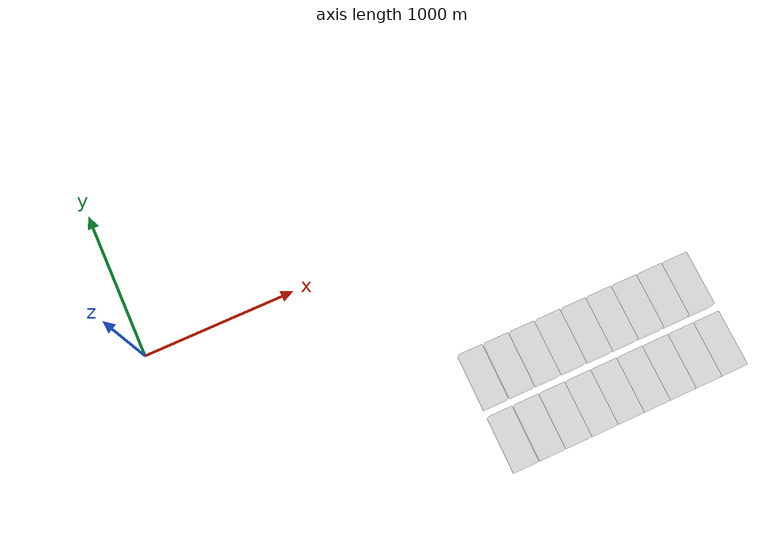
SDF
<sdf version="1.5">
 <world name="default">
  <model name="lost_person">
   <pose>999.144 1001.19 651.982 -0.062539 -0.184761 0.006763</pose>
   <link name="link">
    <sensor name="gps" type="gps"><always_on>1</always_on></sensor>
    <kinematic>1</kinematic>
    <collision name="collision">
     <geometry><box><size>1 1 1</size></box></geometry>
     <surface><friction><ode><mu>0</mu><mu2>0</mu2></ode></friction></surface>
    </collision>
    <visual name="visual"><geometry><box><size>1 1 1</size></box></geometry></visual>
    <visual name="visual_ul">
     <pose>0.5 0.5 0.5 0 -0 0</pose>
     <geometry><sphere><radius>0.04</radius></sphere></geometry>
     <material><script><name>Gazebo/Red</name><uri>__default__</uri></script></material>
    </visual>
    <visual name="visual_ur">
     <pose>0.5 -0.5 0.5 0 -0 0</pose>
     <geometry><sphere><radius>0.04</radius></sphere></geometry>
     <material><script><name>Gazebo/Green</name><uri>__default__</uri></script></material>
    </visual>
    <visual name="visual_lr">
     <pose>-0.5 -0.5 0.5 0 -0 0</pose>
     <geometry><sphere><radius>0.04</radius></sphere></geometry>
     <material><script><name>Gazebo/Blue</name><uri>__default__</uri></script></material>
    </visual>
    <visual name="visual_ll">
     <pose>-0.5 0.5 0.5 0 -0 0</pose>
     <geometry><sphere><radius>0.04</radius></sphere></geometry>
     <material><script><name>Gazebo/Yellow</name><uri>__default__</uri></script></material>
    </visual>
    <inertial>
     <inertia><ixx>1</ixx><ixy>0</ixy><ixz>0</ixz><iyy>1</iyy><iyz>0</iyz><izz>1</izz></inertia>
     <mass>1</mass>
    </inertial>
   </link>
   <plugin name="random" filename="libLostPersonControllerPlugin.so">
    <initial_velocity>0 0.2 0</initial_velocity>
    <velocity_factor>0.5</velocity_factor>
    <update_period>10</update_period>
    <gps>link::gps</gps>
    <swarm_search_area>
     <min_relative_latitude_deg>-0.01</min_relative_latitude_deg>
     <max_relative_latitude_deg>0.01</max_relative_latitude_deg>
     <min_relative_longitude_deg>-0.01</min_relative_longitude_deg>
     <max_relative_longitude_deg>0.01</max_relative_longitude_deg>
    </swarm_search_area>
   </plugin>
  </model>
  <model name="building_group2_0">
   <pose>1800 -1030 330 0 -0 0</pose>
   <static>1</static>
   <link name="link">
    <visual name="visual">
     <geometry><box><size>150 350 100</size></box></geometry>
     <material><ambient>0.2 0.2 0.2 0.2</ambient><diffuse>0.2 0.2 0.2 0.2</diffuse></material>
    </visual>
    <collision name="collision"><geometry><box><size>150 350 80</size></box></geometry></collision>
   </link>
  </model>
  <model name="building_group2_1">
   <pose>1970 -1030 330 0 -0 0</pose>
   <static>1</static>
   <link name="link">
    <visual name="visual">
     <geometry><box><size>150 350 100</size></box></geometry>
     <material><ambient>0.2 0.2 0.2 0.2</ambient><diffuse>0.2 0.2 0.2 0.2</diffuse></material>
    </visual>
    <collision name="collision"><geometry><box><size>150 350 80</size></box></geometry></collision>
   </link>
  </model>
  <model name="building_group2_2">
   <pose>2140 -1030 330 0 -0 0</pose>
   <static>1</static>
   <link name="link">
    <visual name="visual">
     <geometry><box><size>150 350 100</size></box></geometry>
     <material><ambient>0.2 0.2 0.2 0.2</ambient><diffuse>0.2 0.2 0.2 0.2</diffuse></material>
    </visual>
    <collision name="collision"><geometry><box><size>150 350 80</size></box></geometry></collision>
   </link>
  </model>
  <model name="building_group2_3">
   <pose>2310 -1030 330 0 -0 0</pose>
   <static>1</static>
   <link name="link">
    <visual name="visual">
     <geometry><box><size>150 350 100</size></box></geometry>
     <material><ambient>0.2 0.2 0.2 0.2</ambient><diffuse>0.2 0.2 0.2 0.2</diffuse></material>
    </visual>
    <collision name="collision"><geometry><box><size>150 350 80</size></box></geometry></collision>
   </link>
  </model>
  <model name="building_group2_4">
   <pose>2480 -1030 330 0 -0 0</pose>
   <static>1</static>
   <link name="link">
    <visual name="visual">
     <geometry><box><size>150 350 100</size></box></geometry>
     <material><ambient>0.2 0.2 0.2 0.2</ambient><diffuse>0.2 0.2 0.2 0.2</diffuse></material>
    </visual>
    <collision name="collision"><geometry><box><size>150 350 80</size></box></geometry></collision>
   </link>
  </model>
  <model name="building_group2_5">
   <pose>2650 -1030 330 0 -0 0</pose>
   <static>1</static>
   <link name="link">
    <visual name="visual">
     <geometry><box><size>150 350 100</size></box></geometry>
     <material><ambient>0.2 0.2 0.2 0.2</ambient><diffuse>0.2 0.2 0.2 0.2</diffuse></material>
    </visual>
    <collision name="collision"><geometry><box><size>150 350 80</size></box></geometry></collision>
   </link>
  </model>
  <model name="building_group2_6">
   <pose>2820 -1030 330 0 -0 0</pose>
   <static>1</static>
   <link name="link">
    <visual name="visual">
     <geometry><box><size>150 350 100</size></box></geometry>
     <material><ambient>0.2 0.2 0.2 0.2</ambient><diffuse>0.2 0.2 0.2 0.2</diffuse></material>
    </visual>
    <collision name="collision"><geometry><box><size>150 350 80</size></box></geometry></collision>
   </link>
  </model>
  <model name="building_group2_7">
   <pose>2990 -1030 330 0 -0 0</pose>
   <static>1</static>
   <link name="link">
    <visual name="visual">
     <geometry><box><size>150 350 100</size></box></geometry>
     <material><ambient>0.2 0.2 0.2 0.2</ambient><diffuse>0.2 0.2 0.2 0.2</diffuse></material>
    </visual>
    <collision name="collision"><geometry><box><size>150 350 80</size></box></geometry></collision>
   </link>
  </model>
  <model name="building_group2_8">
   <pose>3160 -1030 330 0 -0 0</pose>
   <static>1</static>
   <link name="link">
    <visual name="visual">
     <geometry><box><size>150 350 100</size></box></geometry>
     <material><ambient>0.2 0.2 0.2 0.2</ambient><diffuse>0.2 0.2 0.2 0.2</diffuse></material>
    </visual>
    <collision name="collision"><geometry><box><size>150 350 80</size></box></geometry></collision>
   </link>
  </model>
  <model name="building_group2_10">
   <pose>1800 -1430 330 0 -0 0</pose>
   <static>1</static>
   <link name="link">
    <visual name="visual">
     <geometry><box><size>150 350 100</size></box></geometry>
     <material><ambient>0.2 0.2 0.2 0.2</ambient><diffuse>0.2 0.2 0.2 0.2</diffuse></material>
    </visual>
    <collision name="collision"><geometry><box><size>150 350 80</size></box></geometry></collision>
   </link>
  </model>
  <model name="building_group2_11">
   <pose>1970 -1430 330 0 -0 0</pose>
   <static>1</static>
   <link name="link">
    <visual name="visual">
     <geometry><box><size>150 350 100</size></box></geometry>
     <material><ambient>0.2 0.2 0.2 0.2</ambient><diffuse>0.2 0.2 0.2 0.2</diffuse></material>
    </visual>
    <collision name="collision"><geometry><box><size>150 350 80</size></box></geometry></collision>
   </link>
  </model>
  <model name="building_group2_12">
   <pose>2140 -1430 330 0 -0 0</pose>
   <static>1</static>
   <link name="link">
    <visual name="visual">
     <geometry><box><size>150 350 100</size></box></geometry>
     <material><ambient>0.2 0.2 0.2 0.2</ambient><diffuse>0.2 0.2 0.2 0.2</diffuse></material>
    </visual>
    <collision name="collision"><geometry><box><size>150 350 80</size></box></geometry></collision>
   </link>
  </model>
  <model name="building_group2_13">
   <pose>2310 -1430 330 0 -0 0</pose>
   <static>1</static>
   <link name="link">
    <visual name="visual">
     <geometry><box><size>150 350 100</size></box></geometry>
     <material><ambient>0.2 0.2 0.2 0.2</ambient><diffuse>0.2 0.2 0.2 0.2</diffuse></material>
    </visual>
    <collision name="collision"><geometry><box><size>150 350 80</size></box></geometry></collision>
   </link>
  </model>
  <model name="building_group2_14">
   <pose>2480 -1430 330 0 -0 0</pose>
   <static>1</static>
   <link name="link">
    <visual name="visual">
     <geometry><box><size>150 350 100</size></box></geometry>
     <material><ambient>0.2 0.2 0.2 0.2</ambient><diffuse>0.2 0.2 0.2 0.2</diffuse></material>
    </visual>
    <collision name="collision"><geometry><box><size>150 350 80</size></box></geometry></collision>
   </link>
  </model>
  <model name="building_group2_15">
   <pose>2650 -1430 330 0 -0 0</pose>
   <static>1</static>
   <link name="link">
    <visual name="visual">
     <geometry><box><size>150 350 100</size></box></geometry>
     <material><ambient>0.2 0.2 0.2 0.2</ambient><diffuse>0.2 0.2 0.2 0.2</diffuse></material>
    </visual>
    <collision name="collision"><geometry><box><size>150 350 80</size></box></geometry></collision>
   </link>
  </model>
  <model name="building_group2_16">
   <pose>2820 -1430 330 0 -0 0</pose>
   <static>1</static>
   <link name="link">
    <visual name="visual">
     <geometry><box><size>150 350 100</size></box></geometry>
     <material><ambient>0.2 0.2 0.2 0.2</ambient><diffuse>0.2 0.2 0.2 0.2</diffuse></material>
    </visual>
    <collision name="collision"><geometry><box><size>150 350 80</size></box></geometry></collision>
   </link>
  </model>
  <model name="building_group2_17">
   <pose>2990 -1430 330 0 -0 0</pose>
   <static>1</static>
   <link name="link">
    <visual name="visual">
     <geometry><box><size>150 350 100</size></box></geometry>
     <material><ambient>0.2 0.2 0.2 0.2</ambient><diffuse>0.2 0.2 0.2 0.2</diffuse></material>
    </visual>
    <collision name="collision"><geometry><box><size>150 350 80</size></box></geometry></collision>
   </link>
  </model>
  <model name="building_group2_18">
   <pose>3160 -1430 330 0 -0 0</pose>
   <static>1</static>
   <link name="link">
    <visual name="visual">
     <geometry><box><size>150 350 100</size></box></geometry>
     <material><ambient>0.2 0.2 0.2 0.2</ambient><diffuse>0.2 0.2 0.2 0.2</diffuse></material>
    </visual>
    <collision name="collision"><geometry><box><size>150 350 80</size></box></geometry></collision>
   </link>
  </model>
  <model name="rotor_5">
   <pose>5 0 789.624 0 0 -0.452</pose>
   <link name="link">
    <sensor name="gps" type="gps">
     <gps>
      <position_sensing>
       <horizontal>
        <noise type="gaussian_quantized">
         <mean>0</mean>
         <stddev>4</stddev>
         <bias_mean>0</bias_mean>
         <bias_stddev>0</bias_stddev>
         <precision>0.001</precision>
        </noise>
       </horizontal>
       <vertical>
        <noise type="gaussian_quantized">
         <mean>0</mean>
         <stddev>8</stddev>
         <bias_mean>0</bias_mean>
         <bias_stddev>0</bias_stddev>
         <precision>0.01</precision>
        </noise>
       </vertical>
      </position_sensing>
      <velocity_sensing>
       <horizontal>
        <noise type="gaussian_quantized">
         <mean>0</mean>
         <stddev>4</stddev>
         <bias_mean>0</bias_mean>
         <bias_stddev>0</bias_stddev>
         <precision>0.001</precision>
        </noise>
       </horizontal>
       <vertical>
        <noise type="gaussian_quantized">
         <mean>0</mean>
         <stddev>8</stddev>
         <bias_mean>0</bias_mean>
         <bias_stddev>0</bias_stddev>
         <precision>0.01</precision>
        </noise>
       </vertical>
      </velocity_sensing>
     </gps>
     <always_on>1</always_on>
    </sensor>
    <sensor name="imu" type="imu">
     <imu>
      <angular_velocity>
       <x>
        <noise type="gaussian">
         <mean>0</mean>
         <stddev>0.0002</stddev>
         <bias_mean>7.5e-06</bias_mean>
         <bias_stddev>8e-07</bias_stddev>
        </noise>
       </x>
       <y>
        <noise type="gaussian">
         <mean>0</mean>
         <stddev>0.0002</stddev>
         <bias_mean>7.5e-06</bias_mean>
         <bias_stddev>8e-07</bias_stddev>
        </noise>
       </y>
       <z>
        <noise type="gaussian">
         <mean>0</mean>
         <stddev>0.0002</stddev>
         <bias_mean>7.5e-06</bias_mean>
         <bias_stddev>8e-07</bias_stddev>
        </noise>
       </z>
      </angular_velocity>
      <linear_acceleration>
       <x>
        <noise type="gaussian">
         <mean>0</mean>
         <stddev>0.0002</stddev>
         <bias_mean>7.5e-06</bias_mean>
         <bias_stddev>8e-07</bias_stddev>
        </noise>
       </x>
       <y>
        <noise type="gaussian">
         <mean>0</mean>
         <stddev>0.0002</stddev>
         <bias_mean>7.5e-06</bias_mean>
         <bias_stddev>8e-07</bias_stddev>
        </noise>
       </y>
       <z>
        <noise type="gaussian">
         <mean>0</mean>
         <stddev>0.0002</stddev>
         <bias_mean>7.5e-06</bias_mean>
         <bias_stddev>8e-07</bias_stddev>
        </noise>
       </z>
      </linear_acceleration>
     </imu>
     <always_on>1</always_on>
    </sensor>
    <sensor name="camera" type="logical_camera">
     <logical_camera>
      <near>0.1</near>
      <far>50</far>
      <horizontal_fov>1.4656</horizontal_fov>
      <aspect_ratio>1.778</aspect_ratio>
     </logical_camera>
     <visualize>0</visualize>
     <always_on>1</always_on>
    </sensor>
    <kinematic>1</kinematic>
    <gravity>0</gravity>
    <collision name="collision"><geometry><box><size>0.2 0.1 0.1</size></box></geometry></collision>
    <visual name="visual"><geometry><box><size>0.2 0.1 0.1</size></box></geometry></visual>
    <visual name="visual_front">
     <pose>0.07 0 0.04 0 -0 0</pose>
     <geometry><sphere><radius>0.04</radius></sphere></geometry>
     <material><script><name>Gazebo/Red</name><uri>__default__</uri></script></material>
    </visual>
    <visual name="visual_blade1">
     <pose>0 0 0.055 0 -0 0.78539</pose>
     <geometry><box><size>0.4 0.02 0.01</size></box></geometry>
     <material><script><name>Gazebo/Green</name><uri>__default__</uri></script></material>
    </visual>
    <visual name="visual_blade2">
     <pose>0 0 0.055 0 -0 2.3562</pose>
     <geometry><box><size>0.4 0.02 0.01</size></box></geometry>
     <material><script><name>Gazebo/Green</name><uri>__default__</uri></script></material>
    </visual>
    <inertial>
     <inertia><ixx>1</ixx><ixy>0</ixy><ixz>0</ixz><iyy>1</iyy><iyz>0</iyz><izz>1</izz></inertia>
     <mass>1</mass>
    </inertial>
   </link>
   <plugin name="swarm_controller_rotor_5" filename="libTeamControllerPlugin.so">
    <type>rotor</type>
    <camera>link::camera</camera>
    <gps>link::gps</gps>
    <imu>link::imu</imu>
    <address>192.168.1.6</address>
    <num_messages>1</num_messages>
    <swarm_search_area>
     <min_relative_latitude_deg>-0.01</min_relative_latitude_deg>
     <max_relative_latitude_deg>0.01</max_relative_latitude_deg>
     <min_relative_longitude_deg>-0.01</min_relative_longitude_deg>
     <max_relative_longitude_deg>0.01</max_relative_longitude_deg>
    </swarm_search_area>
    <battery>
     <capacity>3500</capacity>
     <consumption>1500</consumption>
     <consumption_factor>0.8</consumption_factor>
    </battery>
   </plugin>
  </model>
  <model name="rotor_11">
   <pose>5 1 789.468 0 0 -0.452</pose>
   <link name="link">
    <sensor name="gps" type="gps">
     <gps>
      <position_sensing>
       <horizontal>
        <noise type="gaussian_quantized">
         <mean>0</mean>
         <stddev>4</stddev>
         <bias_mean>0</bias_mean>
         <bias_stddev>0</bias_stddev>
         <precision>0.001</precision>
        </noise>
       </horizontal>
       <vertical>
        <noise type="gaussian_quantized">
         <mean>0</mean>
         <stddev>8</stddev>
         <bias_mean>0</bias_mean>
         <bias_stddev>0</bias_stddev>
         <precision>0.01</precision>
        </noise>
       </vertical>
      </position_sensing>
      <velocity_sensing>
       <horizontal>
        <noise type="gaussian_quantized">
         <mean>0</mean>
         <stddev>4</stddev>
         <bias_mean>0</bias_mean>
         <bias_stddev>0</bias_stddev>
         <precision>0.001</precision>
        </noise>
       </horizontal>
       <vertical>
        <noise type="gaussian_quantized">
         <mean>0</mean>
         <stddev>8</stddev>
         <bias_mean>0</bias_mean>
         <bias_stddev>0</bias_stddev>
         <precision>0.01</precision>
        </noise>
       </vertical>
      </velocity_sensing>
     </gps>
     <always_on>1</always_on>
    </sensor>
    <sensor name="imu" type="imu">
     <imu>
      <angular_velocity>
       <x>
        <noise type="gaussian">
         <mean>0</mean>
         <stddev>0.0002</stddev>
         <bias_mean>7.5e-06</bias_mean>
         <bias_stddev>8e-07</bias_stddev>
        </noise>
       </x>
       <y>
        <noise type="gaussian">
         <mean>0</mean>
         <stddev>0.0002</stddev>
         <bias_mean>7.5e-06</bias_mean>
         <bias_stddev>8e-07</bias_stddev>
        </noise>
       </y>
       <z>
        <noise type="gaussian">
         <mean>0</mean>
         <stddev>0.0002</stddev>
         <bias_mean>7.5e-06</bias_mean>
         <bias_stddev>8e-07</bias_stddev>
        </noise>
       </z>
      </angular_velocity>
      <linear_acceleration>
       <x>
        <noise type="gaussian">
         <mean>0</mean>
         <stddev>0.0002</stddev>
         <bias_mean>7.5e-06</bias_mean>
         <bias_stddev>8e-07</bias_stddev>
        </noise>
       </x>
       <y>
        <noise type="gaussian">
         <mean>0</mean>
         <stddev>0.0002</stddev>
         <bias_mean>7.5e-06</bias_mean>
         <bias_stddev>8e-07</bias_stddev>
        </noise>
       </y>
       <z>
        <noise type="gaussian">
         <mean>0</mean>
         <stddev>0.0002</stddev>
         <bias_mean>7.5e-06</bias_mean>
         <bias_stddev>8e-07</bias_stddev>
        </noise>
       </z>
      </linear_acceleration>
     </imu>
     <always_on>1</always_on>
    </sensor>
    <sensor name="camera" type="logical_camera">
     <logical_camera>
      <near>0.1</near>
      <far>50</far>
      <horizontal_fov>1.4656</horizontal_fov>
      <aspect_ratio>1.778</aspect_ratio>
     </logical_camera>
     <visualize>0</visualize>
     <always_on>1</always_on>
    </sensor>
    <kinematic>1</kinematic>
    <gravity>0</gravity>
    <collision name="collision"><geometry><box><size>0.2 0.1 0.1</size></box></geometry></collision>
    <visual name="visual"><geometry><box><size>0.2 0.1 0.1</size></box></geometry></visual>
    <visual name="visual_front">
     <pose>0.07 0 0.04 0 -0 0</pose>
     <geometry><sphere><radius>0.04</radius></sphere></geometry>
     <material><script><name>Gazebo/Red</name><uri>__default__</uri></script></material>
    </visual>
    <visual name="visual_blade1">
     <pose>0 0 0.055 0 -0 0.78539</pose>
     <geometry><box><size>0.4 0.02 0.01</size></box></geometry>
     <material><script><name>Gazebo/Green</name><uri>__default__</uri></script></material>
    </visual>
    <visual name="visual_blade2">
     <pose>0 0 0.055 0 -0 2.3562</pose>
     <geometry><box><size>0.4 0.02 0.01</size></box></geometry>
     <material><script><name>Gazebo/Green</name><uri>__default__</uri></script></material>
    </visual>
    <inertial>
     <inertia><ixx>1</ixx><ixy>0</ixy><ixz>0</ixz><iyy>1</iyy><iyz>0</iyz><izz>1</izz></inertia>
     <mass>1</mass>
    </inertial>
   </link>
   <plugin name="swarm_controller_rotor_11" filename="libTeamControllerPlugin.so">
    <type>rotor</type>
    <camera>link::camera</camera>
    <gps>link::gps</gps>
    <imu>link::imu</imu>
    <address>192.168.1.12</address>
    <num_messages>1</num_messages>
    <swarm_search_area>
     <min_relative_latitude_deg>-0.01</min_relative_latitude_deg>
     <max_relative_latitude_deg>0.01</max_relative_latitude_deg>
     <min_relative_longitude_deg>-0.01</min_relative_longitude_deg>
     <max_relative_longitude_deg>0.01</max_relative_longitude_deg>
    </swarm_search_area>
    <battery>
     <capacity>3500</capacity>
     <consumption>1500</consumption>
     <consumption_factor>0.8</consumption_factor>
    </battery>
   </plugin>
  </model>
  <model name="rotor_17">
   <pose>5 2 789.311 0 0 -0.452</pose>
   <link name="link">
    <sensor name="gps" type="gps">
     <gps>
      <position_sensing>
       <horizontal>
        <noise type="gaussian_quantized">
         <mean>0</mean>
         <stddev>4</stddev>
         <bias_mean>0</bias_mean>
         <bias_stddev>0</bias_stddev>
         <precision>0.001</precision>
        </noise>
       </horizontal>
       <vertical>
        <noise type="gaussian_quantized">
         <mean>0</mean>
         <stddev>8</stddev>
         <bias_mean>0</bias_mean>
         <bias_stddev>0</bias_stddev>
         <precision>0.01</precision>
        </noise>
       </vertical>
      </position_sensing>
      <velocity_sensing>
       <horizontal>
        <noise type="gaussian_quantized">
         <mean>0</mean>
         <stddev>4</stddev>
         <bias_mean>0</bias_mean>
         <bias_stddev>0</bias_stddev>
         <precision>0.001</precision>
        </noise>
       </horizontal>
       <vertical>
        <noise type="gaussian_quantized">
         <mean>0</mean>
         <stddev>8</stddev>
         <bias_mean>0</bias_mean>
         <bias_stddev>0</bias_stddev>
         <precision>0.01</precision>
        </noise>
       </vertical>
      </velocity_sensing>
     </gps>
     <always_on>1</always_on>
    </sensor>
    <sensor name="imu" type="imu">
     <imu>
      <angular_velocity>
       <x>
        <noise type="gaussian">
         <mean>0</mean>
         <stddev>0.0002</stddev>
         <bias_mean>7.5e-06</bias_mean>
         <bias_stddev>8e-07</bias_stddev>
        </noise>
       </x>
       <y>
        <noise type="gaussian">
         <mean>0</mean>
         <stddev>0.0002</stddev>
         <bias_mean>7.5e-06</bias_mean>
         <bias_stddev>8e-07</bias_stddev>
        </noise>
       </y>
       <z>
        <noise type="gaussian">
         <mean>0</mean>
         <stddev>0.0002</stddev>
         <bias_mean>7.5e-06</bias_mean>
         <bias_stddev>8e-07</bias_stddev>
        </noise>
       </z>
      </angular_velocity>
      <linear_acceleration>
       <x>
        <noise type="gaussian">
         <mean>0</mean>
         <stddev>0.0002</stddev>
         <bias_mean>7.5e-06</bias_mean>
         <bias_stddev>8e-07</bias_stddev>
        </noise>
       </x>
       <y>
        <noise type="gaussian">
         <mean>0</mean>
         <stddev>0.0002</stddev>
         <bias_mean>7.5e-06</bias_mean>
         <bias_stddev>8e-07</bias_stddev>
        </noise>
       </y>
       <z>
        <noise type="gaussian">
         <mean>0</mean>
         <stddev>0.0002</stddev>
         <bias_mean>7.5e-06</bias_mean>
         <bias_stddev>8e-07</bias_stddev>
        </noise>
       </z>
      </linear_acceleration>
     </imu>
     <always_on>1</always_on>
    </sensor>
    <sensor name="camera" type="logical_camera">
     <logical_camera>
      <near>0.1</near>
      <far>50</far>
      <horizontal_fov>1.4656</horizontal_fov>
      <aspect_ratio>1.778</aspect_ratio>
     </logical_camera>
     <visualize>0</visualize>
     <always_on>1</always_on>
    </sensor>
    <kinematic>1</kinematic>
    <gravity>0</gravity>
    <collision name="collision"><geometry><box><size>0.2 0.1 0.1</size></box></geometry></collision>
    <visual name="visual"><geometry><box><size>0.2 0.1 0.1</size></box></geometry></visual>
    <visual name="visual_front">
     <pose>0.07 0 0.04 0 -0 0</pose>
     <geometry><sphere><radius>0.04</radius></sphere></geometry>
     <material><script><name>Gazebo/Red</name><uri>__default__</uri></script></material>
    </visual>
    <visual name="visual_blade1">
     <pose>0 0 0.055 0 -0 0.78539</pose>
     <geometry><box><size>0.4 0.02 0.01</size></box></geometry>
     <material><script><name>Gazebo/Green</name><uri>__default__</uri></script></material>
    </visual>
    <visual name="visual_blade2">
     <pose>0 0 0.055 0 -0 2.3562</pose>
     <geometry><box><size>0.4 0.02 0.01</size></box></geometry>
     <material><script><name>Gazebo/Green</name><uri>__default__</uri></script></material>
    </visual>
    <inertial>
     <inertia><ixx>1</ixx><ixy>0</ixy><ixz>0</ixz><iyy>1</iyy><iyz>0</iyz><izz>1</izz></inertia>
     <mass>1</mass>
    </inertial>
   </link>
   <plugin name="swarm_controller_rotor_17" filename="libTeamControllerPlugin.so">
    <type>rotor</type>
    <camera>link::camera</camera>
    <gps>link::gps</gps>
    <imu>link::imu</imu>
    <address>192.168.1.18</address>
    <num_messages>1</num_messages>
    <swarm_search_area>
     <min_relative_latitude_deg>-0.01</min_relative_latitude_deg>
     <max_relative_latitude_deg>0.01</max_relative_latitude_deg>
     <min_relative_longitude_deg>-0.01</min_relative_longitude_deg>
     <max_relative_longitude_deg>0.01</max_relative_longitude_deg>
    </swarm_search_area>
    <battery>
     <capacity>3500</capacity>
     <consumption>1500</consumption>
     <consumption_factor>0.8</consumption_factor>
    </battery>
   </plugin>
  </model>
  <model name="rotor_23">
   <pose>5 3 789.155 0 0 -0.452</pose>
   <link name="link">
    <sensor name="gps" type="gps">
     <gps>
      <position_sensing>
       <horizontal>
        <noise type="gaussian_quantized">
         <mean>0</mean>
         <stddev>4</stddev>
         <bias_mean>0</bias_mean>
         <bias_stddev>0</bias_stddev>
         <precision>0.001</precision>
        </noise>
       </horizontal>
       <vertical>
        <noise type="gaussian_quantized">
         <mean>0</mean>
         <stddev>8</stddev>
         <bias_mean>0</bias_mean>
         <bias_stddev>0</bias_stddev>
         <precision>0.01</precision>
        </noise>
       </vertical>
      </position_sensing>
      <velocity_sensing>
       <horizontal>
        <noise type="gaussian_quantized">
         <mean>0</mean>
         <stddev>4</stddev>
         <bias_mean>0</bias_mean>
         <bias_stddev>0</bias_stddev>
         <precision>0.001</precision>
        </noise>
       </horizontal>
       <vertical>
        <noise type="gaussian_quantized">
         <mean>0</mean>
         <stddev>8</stddev>
         <bias_mean>0</bias_mean>
         <bias_stddev>0</bias_stddev>
         <precision>0.01</precision>
        </noise>
       </vertical>
      </velocity_sensing>
     </gps>
     <always_on>1</always_on>
    </sensor>
    <sensor name="imu" type="imu">
     <imu>
      <angular_velocity>
       <x>
        <noise type="gaussian">
         <mean>0</mean>
         <stddev>0.0002</stddev>
         <bias_mean>7.5e-06</bias_mean>
         <bias_stddev>8e-07</bias_stddev>
        </noise>
       </x>
       <y>
        <noise type="gaussian">
         <mean>0</mean>
         <stddev>0.0002</stddev>
         <bias_mean>7.5e-06</bias_mean>
         <bias_stddev>8e-07</bias_stddev>
        </noise>
       </y>
       <z>
        <noise type="gaussian">
         <mean>0</mean>
         <stddev>0.0002</stddev>
         <bias_mean>7.5e-06</bias_mean>
         <bias_stddev>8e-07</bias_stddev>
        </noise>
       </z>
      </angular_velocity>
      <linear_acceleration>
       <x>
        <noise type="gaussian">
         <mean>0</mean>
         <stddev>0.0002</stddev>
         <bias_mean>7.5e-06</bias_mean>
         <bias_stddev>8e-07</bias_stddev>
        </noise>
       </x>
       <y>
        <noise type="gaussian">
         <mean>0</mean>
         <stddev>0.0002</stddev>
         <bias_mean>7.5e-06</bias_mean>
         <bias_stddev>8e-07</bias_stddev>
        </noise>
       </y>
       <z>
        <noise type="gaussian">
         <mean>0</mean>
         <stddev>0.0002</stddev>
         <bias_mean>7.5e-06</bias_mean>
         <bias_stddev>8e-07</bias_stddev>
        </noise>
       </z>
      </linear_acceleration>
     </imu>
     <always_on>1</always_on>
    </sensor>
    <sensor name="camera" type="logical_camera">
     <logical_camera>
      <near>0.1</near>
      <far>50</far>
      <horizontal_fov>1.4656</horizontal_fov>
      <aspect_ratio>1.778</aspect_ratio>
     </logical_camera>
     <visualize>0</visualize>
     <always_on>1</always_on>
    </sensor>
    <kinematic>1</kinematic>
    <gravity>0</gravity>
    <collision name="collision"><geometry><box><size>0.2 0.1 0.1</size></box></geometry></collision>
    <visual name="visual"><geometry><box><size>0.2 0.1 0.1</size></box></geometry></visual>
    <visual name="visual_front">
     <pose>0.07 0 0.04 0 -0 0</pose>
     <geometry><sphere><radius>0.04</radius></sphere></geometry>
     <material><script><name>Gazebo/Red</name><uri>__default__</uri></script></material>
    </visual>
    <visual name="visual_blade1">
     <pose>0 0 0.055 0 -0 0.78539</pose>
     <geometry><box><size>0.4 0.02 0.01</size></box></geometry>
     <material><script><name>Gazebo/Green</name><uri>__default__</uri></script></material>
    </visual>
    <visual name="visual_blade2">
     <pose>0 0 0.055 0 -0 2.3562</pose>
     <geometry><box><size>0.4 0.02 0.01</size></box></geometry>
     <material><script><name>Gazebo/Green</name><uri>__default__</uri></script></material>
    </visual>
    <inertial>
     <inertia><ixx>1</ixx><ixy>0</ixy><ixz>0</ixz><iyy>1</iyy><iyz>0</iyz><izz>1</izz></inertia>
     <mass>1</mass>
    </inertial>
   </link>
   <plugin name="swarm_controller_rotor_23" filename="libTeamControllerPlugin.so">
    <type>rotor</type>
    <camera>link::camera</camera>
    <gps>link::gps</gps>
    <imu>link::imu</imu>
    <address>192.168.1.24</address>
    <num_messages>1</num_messages>
    <swarm_search_area>
     <min_relative_latitude_deg>-0.01</min_relative_latitude_deg>
     <max_relative_latitude_deg>0.01</max_relative_latitude_deg>
     <min_relative_longitude_deg>-0.01</min_relative_longitude_deg>
     <max_relative_longitude_deg>0.01</max_relative_longitude_deg>
    </swarm_search_area>
    <battery>
     <capacity>3500</capacity>
     <consumption>1500</consumption>
     <consumption_factor>0.8</consumption_factor>
    </battery>
   </plugin>
  </model>
  <model name="rotor_28">
   <pose>4 4 789.062 0 0 -0.452</pose>
   <link name="link">
    <sensor name="gps" type="gps">
     <gps>
      <position_sensing>
       <horizontal>
        <noise type="gaussian_quantized">
         <mean>0</mean>
         <stddev>4</stddev>
         <bias_mean>0</bias_mean>
         <bias_stddev>0</bias_stddev>
         <precision>0.001</precision>
        </noise>
       </horizontal>
       <vertical>
        <noise type="gaussian_quantized">
         <mean>0</mean>
         <stddev>8</stddev>
         <bias_mean>0</bias_mean>
         <bias_stddev>0</bias_stddev>
         <precision>0.01</precision>
        </noise>
       </vertical>
      </position_sensing>
      <velocity_sensing>
       <horizontal>
        <noise type="gaussian_quantized">
         <mean>0</mean>
         <stddev>4</stddev>
         <bias_mean>0</bias_mean>
         <bias_stddev>0</bias_stddev>
         <precision>0.001</precision>
        </noise>
       </horizontal>
       <vertical>
        <noise type="gaussian_quantized">
         <mean>0</mean>
         <stddev>8</stddev>
         <bias_mean>0</bias_mean>
         <bias_stddev>0</bias_stddev>
         <precision>0.01</precision>
        </noise>
       </vertical>
      </velocity_sensing>
     </gps>
     <always_on>1</always_on>
    </sensor>
    <sensor name="imu" type="imu">
     <imu>
      <angular_velocity>
       <x>
        <noise type="gaussian">
         <mean>0</mean>
         <stddev>0.0002</stddev>
         <bias_mean>7.5e-06</bias_mean>
         <bias_stddev>8e-07</bias_stddev>
        </noise>
       </x>
       <y>
        <noise type="gaussian">
         <mean>0</mean>
         <stddev>0.0002</stddev>
         <bias_mean>7.5e-06</bias_mean>
         <bias_stddev>8e-07</bias_stddev>
        </noise>
       </y>
       <z>
        <noise type="gaussian">
         <mean>0</mean>
         <stddev>0.0002</stddev>
         <bias_mean>7.5e-06</bias_mean>
         <bias_stddev>8e-07</bias_stddev>
        </noise>
       </z>
      </angular_velocity>
      <linear_acceleration>
       <x>
        <noise type="gaussian">
         <mean>0</mean>
         <stddev>0.0002</stddev>
         <bias_mean>7.5e-06</bias_mean>
         <bias_stddev>8e-07</bias_stddev>
        </noise>
       </x>
       <y>
        <noise type="gaussian">
         <mean>0</mean>
         <stddev>0.0002</stddev>
         <bias_mean>7.5e-06</bias_mean>
         <bias_stddev>8e-07</bias_stddev>
        </noise>
       </y>
       <z>
        <noise type="gaussian">
         <mean>0</mean>
         <stddev>0.0002</stddev>
         <bias_mean>7.5e-06</bias_mean>
         <bias_stddev>8e-07</bias_stddev>
        </noise>
       </z>
      </linear_acceleration>
     </imu>
     <always_on>1</always_on>
    </sensor>
    <sensor name="camera" type="logical_camera">
     <logical_camera>
      <near>0.1</near>
      <far>50</far>
      <horizontal_fov>1.4656</horizontal_fov>
      <aspect_ratio>1.778</aspect_ratio>
     </logical_camera>
     <visualize>0</visualize>
     <always_on>1</always_on>
    </sensor>
    <kinematic>1</kinematic>
    <gravity>0</gravity>
    <collision name="collision"><geometry><box><size>0.2 0.1 0.1</size></box></geometry></collision>
    <visual name="visual"><geometry><box><size>0.2 0.1 0.1</size></box></geometry></visual>
    <visual name="visual_front">
     <pose>0.07 0 0.04 0 -0 0</pose>
     <geometry><sphere><radius>0.04</radius></sphere></geometry>
     <material><script><name>Gazebo/Red</name><uri>__default__</uri></script></material>
    </visual>
    <visual name="visual_blade1">
     <pose>0 0 0.055 0 -0 0.78539</pose>
     <geometry><box><size>0.4 0.02 0.01</size></box></geometry>
     <material><script><name>Gazebo/Green</name><uri>__default__</uri></script></material>
    </visual>
    <visual name="visual_blade2">
     <pose>0 0 0.055 0 -0 2.3562</pose>
     <geometry><box><size>0.4 0.02 0.01</size></box></geometry>
     <material><script><name>Gazebo/Green</name><uri>__default__</uri></script></material>
    </visual>
    <inertial>
     <inertia><ixx>1</ixx><ixy>0</ixy><ixz>0</ixz><iyy>1</iyy><iyz>0</iyz><izz>1</izz></inertia>
     <mass>1</mass>
    </inertial>
   </link>
   <plugin name="swarm_controller_rotor_28" filename="libTeamControllerPlugin.so">
    <type>rotor</type>
    <camera>link::camera</camera>
    <gps>link::gps</gps>
    <imu>link::imu</imu>
    <address>192.168.1.29</address>
    <num_messages>1</num_messages>
    <swarm_search_area>
     <min_relative_latitude_deg>-0.01</min_relative_latitude_deg>
     <max_relative_latitude_deg>0.01</max_relative_latitude_deg>
     <min_relative_longitude_deg>-0.01</min_relative_longitude_deg>
     <max_relative_longitude_deg>0.01</max_relative_longitude_deg>
    </swarm_search_area>
    <battery>
     <capacity>3500</capacity>
     <consumption>1500</consumption>
     <consumption_factor>0.8</consumption_factor>
    </battery>
   </plugin>
  </model>
  <model name="rotor_29">
   <pose>5 4 788.999 0 0 -0.452</pose>
   <link name="link">
    <sensor name="gps" type="gps">
     <gps>
      <position_sensing>
       <horizontal>
        <noise type="gaussian_quantized">
         <mean>0</mean>
         <stddev>4</stddev>
         <bias_mean>0</bias_mean>
         <bias_stddev>0</bias_stddev>
         <precision>0.001</precision>
        </noise>
       </horizontal>
       <vertical>
        <noise type="gaussian_quantized">
         <mean>0</mean>
         <stddev>8</stddev>
         <bias_mean>0</bias_mean>
         <bias_stddev>0</bias_stddev>
         <precision>0.01</precision>
        </noise>
       </vertical>
      </position_sensing>
      <velocity_sensing>
       <horizontal>
        <noise type="gaussian_quantized">
         <mean>0</mean>
         <stddev>4</stddev>
         <bias_mean>0</bias_mean>
         <bias_stddev>0</bias_stddev>
         <precision>0.001</precision>
        </noise>
       </horizontal>
       <vertical>
        <noise type="gaussian_quantized">
         <mean>0</mean>
         <stddev>8</stddev>
         <bias_mean>0</bias_mean>
         <bias_stddev>0</bias_stddev>
         <precision>0.01</precision>
        </noise>
       </vertical>
      </velocity_sensing>
     </gps>
     <always_on>1</always_on>
    </sensor>
    <sensor name="imu" type="imu">
     <imu>
      <angular_velocity>
       <x>
        <noise type="gaussian">
         <mean>0</mean>
         <stddev>0.0002</stddev>
         <bias_mean>7.5e-06</bias_mean>
         <bias_stddev>8e-07</bias_stddev>
        </noise>
       </x>
       <y>
        <noise type="gaussian">
         <mean>0</mean>
         <stddev>0.0002</stddev>
         <bias_mean>7.5e-06</bias_mean>
         <bias_stddev>8e-07</bias_stddev>
        </noise>
       </y>
       <z>
        <noise type="gaussian">
         <mean>0</mean>
         <stddev>0.0002</stddev>
         <bias_mean>7.5e-06</bias_mean>
         <bias_stddev>8e-07</bias_stddev>
        </noise>
       </z>
      </angular_velocity>
      <linear_acceleration>
       <x>
        <noise type="gaussian">
         <mean>0</mean>
         <stddev>0.0002</stddev>
         <bias_mean>7.5e-06</bias_mean>
         <bias_stddev>8e-07</bias_stddev>
        </noise>
       </x>
       <y>
        <noise type="gaussian">
         <mean>0</mean>
         <stddev>0.0002</stddev>
         <bias_mean>7.5e-06</bias_mean>
         <bias_stddev>8e-07</bias_stddev>
        </noise>
       </y>
       <z>
        <noise type="gaussian">
         <mean>0</mean>
         <stddev>0.0002</stddev>
         <bias_mean>7.5e-06</bias_mean>
         <bias_stddev>8e-07</bias_stddev>
        </noise>
       </z>
      </linear_acceleration>
     </imu>
     <always_on>1</always_on>
    </sensor>
    <sensor name="camera" type="logical_camera">
     <logical_camera>
      <near>0.1</near>
      <far>50</far>
      <horizontal_fov>1.4656</horizontal_fov>
      <aspect_ratio>1.778</aspect_ratio>
     </logical_camera>
     <visualize>0</visualize>
     <always_on>1</always_on>
    </sensor>
    <kinematic>1</kinematic>
    <gravity>0</gravity>
    <collision name="collision"><geometry><box><size>0.2 0.1 0.1</size></box></geometry></collision>
    <visual name="visual"><geometry><box><size>0.2 0.1 0.1</size></box></geometry></visual>
    <visual name="visual_front">
     <pose>0.07 0 0.04 0 -0 0</pose>
     <geometry><sphere><radius>0.04</radius></sphere></geometry>
     <material><script><name>Gazebo/Red</name><uri>__default__</uri></script></material>
    </visual>
    <visual name="visual_blade1">
     <pose>0 0 0.055 0 -0 0.78539</pose>
     <geometry><box><size>0.4 0.02 0.01</size></box></geometry>
     <material><script><name>Gazebo/Green</name><uri>__default__</uri></script></material>
    </visual>
    <visual name="visual_blade2">
     <pose>0 0 0.055 0 -0 2.3562</pose>
     <geometry><box><size>0.4 0.02 0.01</size></box></geometry>
     <material><script><name>Gazebo/Green</name><uri>__default__</uri></script></material>
    </visual>
    <inertial>
     <inertia><ixx>1</ixx><ixy>0</ixy><ixz>0</ixz><iyy>1</iyy><iyz>0</iyz><izz>1</izz></inertia>
     <mass>1</mass>
    </inertial>
   </link>
   <plugin name="swarm_controller_rotor_29" filename="libTeamControllerPlugin.so">
    <type>rotor</type>
    <camera>link::camera</camera>
    <gps>link::gps</gps>
    <imu>link::imu</imu>
    <address>192.168.1.30</address>
    <num_messages>1</num_messages>
    <swarm_search_area>
     <min_relative_latitude_deg>-0.01</min_relative_latitude_deg>
     <max_relative_latitude_deg>0.01</max_relative_latitude_deg>
     <min_relative_longitude_deg>-0.01</min_relative_longitude_deg>
     <max_relative_longitude_deg>0.01</max_relative_longitude_deg>
    </swarm_search_area>
    <battery>
     <capacity>3500</capacity>
     <consumption>1500</consumption>
     <consumption_factor>0.8</consumption_factor>
    </battery>
   </plugin>
  </model>
  <model name="rotor_34">
   <pose>4 5 788.874 0 0 -0.452</pose>
   <link name="link">
    <sensor name="gps" type="gps">
     <gps>
      <position_sensing>
       <horizontal>
        <noise type="gaussian_quantized">
         <mean>0</mean>
         <stddev>4</stddev>
         <bias_mean>0</bias_mean>
         <bias_stddev>0</bias_stddev>
         <precision>0.001</precision>
        </noise>
       </horizontal>
       <vertical>
        <noise type="gaussian_quantized">
         <mean>0</mean>
         <stddev>8</stddev>
         <bias_mean>0</bias_mean>
         <bias_stddev>0</bias_stddev>
         <precision>0.01</precision>
        </noise>
       </vertical>
      </position_sensing>
      <velocity_sensing>
       <horizontal>
        <noise type="gaussian_quantized">
         <mean>0</mean>
         <stddev>4</stddev>
         <bias_mean>0</bias_mean>
         <bias_stddev>0</bias_stddev>
         <precision>0.001</precision>
        </noise>
       </horizontal>
       <vertical>
        <noise type="gaussian_quantized">
         <mean>0</mean>
         <stddev>8</stddev>
         <bias_mean>0</bias_mean>
         <bias_stddev>0</bias_stddev>
         <precision>0.01</precision>
        </noise>
       </vertical>
      </velocity_sensing>
     </gps>
     <always_on>1</always_on>
    </sensor>
    <sensor name="imu" type="imu">
     <imu>
      <angular_velocity>
       <x>
        <noise type="gaussian">
         <mean>0</mean>
         <stddev>0.0002</stddev>
         <bias_mean>7.5e-06</bias_mean>
         <bias_stddev>8e-07</bias_stddev>
        </noise>
       </x>
       <y>
        <noise type="gaussian">
         <mean>0</mean>
         <stddev>0.0002</stddev>
         <bias_mean>7.5e-06</bias_mean>
         <bias_stddev>8e-07</bias_stddev>
        </noise>
       </y>
       <z>
        <noise type="gaussian">
         <mean>0</mean>
         <stddev>0.0002</stddev>
         <bias_mean>7.5e-06</bias_mean>
         <bias_stddev>8e-07</bias_stddev>
        </noise>
       </z>
      </angular_velocity>
      <linear_acceleration>
       <x>
        <noise type="gaussian">
         <mean>0</mean>
         <stddev>0.0002</stddev>
         <bias_mean>7.5e-06</bias_mean>
         <bias_stddev>8e-07</bias_stddev>
        </noise>
       </x>
       <y>
        <noise type="gaussian">
         <mean>0</mean>
         <stddev>0.0002</stddev>
         <bias_mean>7.5e-06</bias_mean>
         <bias_stddev>8e-07</bias_stddev>
        </noise>
       </y>
       <z>
        <noise type="gaussian">
         <mean>0</mean>
         <stddev>0.0002</stddev>
         <bias_mean>7.5e-06</bias_mean>
         <bias_stddev>8e-07</bias_stddev>
        </noise>
       </z>
      </linear_acceleration>
     </imu>
     <always_on>1</always_on>
    </sensor>
    <sensor name="camera" type="logical_camera">
     <logical_camera>
      <near>0.1</near>
      <far>50</far>
      <horizontal_fov>1.4656</horizontal_fov>
      <aspect_ratio>1.778</aspect_ratio>
     </logical_camera>
     <visualize>0</visualize>
     <always_on>1</always_on>
    </sensor>
    <kinematic>1</kinematic>
    <gravity>0</gravity>
    <collision name="collision"><geometry><box><size>0.2 0.1 0.1</size></box></geometry></collision>
    <visual name="visual"><geometry><box><size>0.2 0.1 0.1</size></box></geometry></visual>
    <visual name="visual_front">
     <pose>0.07 0 0.04 0 -0 0</pose>
     <geometry><sphere><radius>0.04</radius></sphere></geometry>
     <material><script><name>Gazebo/Red</name><uri>__default__</uri></script></material>
    </visual>
    <visual name="visual_blade1">
     <pose>0 0 0.055 0 -0 0.78539</pose>
     <geometry><box><size>0.4 0.02 0.01</size></box></geometry>
     <material><script><name>Gazebo/Green</name><uri>__default__</uri></script></material>
    </visual>
    <visual name="visual_blade2">
     <pose>0 0 0.055 0 -0 2.3562</pose>
     <geometry><box><size>0.4 0.02 0.01</size></box></geometry>
     <material><script><name>Gazebo/Green</name><uri>__default__</uri></script></material>
    </visual>
    <inertial>
     <inertia><ixx>1</ixx><ixy>0</ixy><ixz>0</ixz><iyy>1</iyy><iyz>0</iyz><izz>1</izz></inertia>
     <mass>1</mass>
    </inertial>
   </link>
   <plugin name="swarm_controller_rotor_34" filename="libTeamControllerPlugin.so">
    <type>rotor</type>
    <camera>link::camera</camera>
    <gps>link::gps</gps>
    <imu>link::imu</imu>
    <address>192.168.1.35</address>
    <num_messages>1</num_messages>
    <swarm_search_area>
     <min_relative_latitude_deg>-0.01</min_relative_latitude_deg>
     <max_relative_latitude_deg>0.01</max_relative_latitude_deg>
     <min_relative_longitude_deg>-0.01</min_relative_longitude_deg>
     <max_relative_longitude_deg>0.01</max_relative_longitude_deg>
    </swarm_search_area>
    <battery>
     <capacity>3500</capacity>
     <consumption>1500</consumption>
     <consumption_factor>0.8</consumption_factor>
    </battery>
   </plugin>
  </model>
  <model name="rotor_35">
   <pose>5 5 788.843 0 0 -0.452</pose>
   <link name="link">
    <sensor name="gps" type="gps">
     <gps>
      <position_sensing>
       <horizontal>
        <noise type="gaussian_quantized">
         <mean>0</mean>
         <stddev>4</stddev>
         <bias_mean>0</bias_mean>
         <bias_stddev>0</bias_stddev>
         <precision>0.001</precision>
        </noise>
       </horizontal>
       <vertical>
        <noise type="gaussian_quantized">
         <mean>0</mean>
         <stddev>8</stddev>
         <bias_mean>0</bias_mean>
         <bias_stddev>0</bias_stddev>
         <precision>0.01</precision>
        </noise>
       </vertical>
      </position_sensing>
      <velocity_sensing>
       <horizontal>
        <noise type="gaussian_quantized">
         <mean>0</mean>
         <stddev>4</stddev>
         <bias_mean>0</bias_mean>
         <bias_stddev>0</bias_stddev>
         <precision>0.001</precision>
        </noise>
       </horizontal>
       <vertical>
        <noise type="gaussian_quantized">
         <mean>0</mean>
         <stddev>8</stddev>
         <bias_mean>0</bias_mean>
         <bias_stddev>0</bias_stddev>
         <precision>0.01</precision>
        </noise>
       </vertical>
      </velocity_sensing>
     </gps>
     <always_on>1</always_on>
    </sensor>
    <sensor name="imu" type="imu">
     <imu>
      <angular_velocity>
       <x>
        <noise type="gaussian">
         <mean>0</mean>
         <stddev>0.0002</stddev>
         <bias_mean>7.5e-06</bias_mean>
         <bias_stddev>8e-07</bias_stddev>
        </noise>
       </x>
       <y>
        <noise type="gaussian">
         <mean>0</mean>
         <stddev>0.0002</stddev>
         <bias_mean>7.5e-06</bias_mean>
         <bias_stddev>8e-07</bias_stddev>
        </noise>
       </y>
       <z>
        <noise type="gaussian">
         <mean>0</mean>
         <stddev>0.0002</stddev>
         <bias_mean>7.5e-06</bias_mean>
         <bias_stddev>8e-07</bias_stddev>
        </noise>
       </z>
      </angular_velocity>
      <linear_acceleration>
       <x>
        <noise type="gaussian">
         <mean>0</mean>
         <stddev>0.0002</stddev>
         <bias_mean>7.5e-06</bias_mean>
         <bias_stddev>8e-07</bias_stddev>
        </noise>
       </x>
       <y>
        <noise type="gaussian">
         <mean>0</mean>
         <stddev>0.0002</stddev>
         <bias_mean>7.5e-06</bias_mean>
         <bias_stddev>8e-07</bias_stddev>
        </noise>
       </y>
       <z>
        <noise type="gaussian">
         <mean>0</mean>
         <stddev>0.0002</stddev>
         <bias_mean>7.5e-06</bias_mean>
         <bias_stddev>8e-07</bias_stddev>
        </noise>
       </z>
      </linear_acceleration>
     </imu>
     <always_on>1</always_on>
    </sensor>
    <sensor name="camera" type="logical_camera">
     <logical_camera>
      <near>0.1</near>
      <far>50</far>
      <horizontal_fov>1.4656</horizontal_fov>
      <aspect_ratio>1.778</aspect_ratio>
     </logical_camera>
     <visualize>0</visualize>
     <always_on>1</always_on>
    </sensor>
    <kinematic>1</kinematic>
    <gravity>0</gravity>
    <collision name="collision"><geometry><box><size>0.2 0.1 0.1</size></box></geometry></collision>
    <visual name="visual"><geometry><box><size>0.2 0.1 0.1</size></box></geometry></visual>
    <visual name="visual_front">
     <pose>0.07 0 0.04 0 -0 0</pose>
     <geometry><sphere><radius>0.04</radius></sphere></geometry>
     <material><script><name>Gazebo/Red</name><uri>__default__</uri></script></material>
    </visual>
    <visual name="visual_blade1">
     <pose>0 0 0.055 0 -0 0.78539</pose>
     <geometry><box><size>0.4 0.02 0.01</size></box></geometry>
     <material><script><name>Gazebo/Green</name><uri>__default__</uri></script></material>
    </visual>
    <visual name="visual_blade2">
     <pose>0 0 0.055 0 -0 2.3562</pose>
     <geometry><box><size>0.4 0.02 0.01</size></box></geometry>
     <material><script><name>Gazebo/Green</name><uri>__default__</uri></script></material>
    </visual>
    <inertial>
     <inertia><ixx>1</ixx><ixy>0</ixy><ixz>0</ixz><iyy>1</iyy><iyz>0</iyz><izz>1</izz></inertia>
     <mass>1</mass>
    </inertial>
   </link>
   <plugin name="swarm_controller_rotor_35" filename="libTeamControllerPlugin.so">
    <type>rotor</type>
    <camera>link::camera</camera>
    <gps>link::gps</gps>
    <imu>link::imu</imu>
    <address>192.168.1.36</address>
    <num_messages>1</num_messages>
    <swarm_search_area>
     <min_relative_latitude_deg>-0.01</min_relative_latitude_deg>
     <max_relative_latitude_deg>0.01</max_relative_latitude_deg>
     <min_relative_longitude_deg>-0.01</min_relative_longitude_deg>
     <max_relative_longitude_deg>0.01</max_relative_longitude_deg>
    </swarm_search_area>
    <battery>
     <capacity>3500</capacity>
     <consumption>1500</consumption>
     <consumption_factor>0.8</consumption_factor>
    </battery>
   </plugin>
  </model>
 </world>
</sdf>
